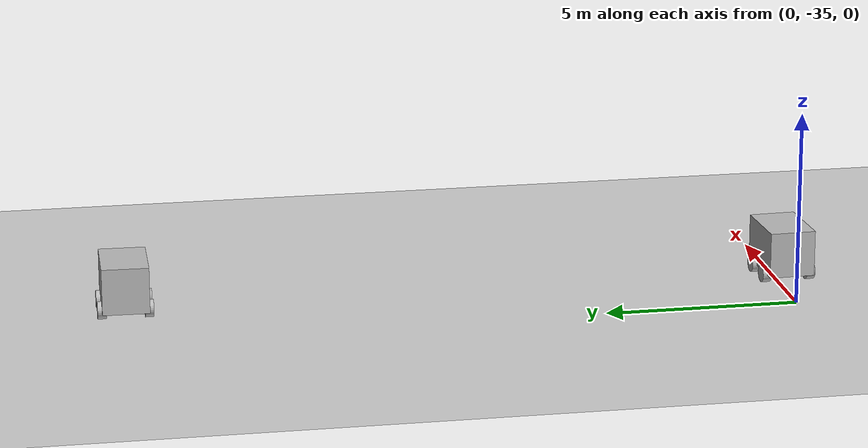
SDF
<sdf version="1.7">
 <world name="rover_world">
  <model name="ground_plane">
   <static>1</static>
   <link name="link">
    <collision name="collision">
     <geometry><plane><normal>0 0 1</normal><size>100 100</size></plane></geometry>
     <surface>
      <contact><collide_bitmask>65535</collide_bitmask></contact>
      <friction><ode><mu>100</mu><mu2>50</mu2></ode></friction>
     </surface>
    </collision>
    <visual name="visual">
     <cast_shadows>0</cast_shadows>
     <geometry><plane><normal>0 0 1</normal><size>100 100</size></plane></geometry>
     <material>
      <script><uri>file://media/materials/scripts/gazebo.material</uri><name>Gazebo/Grey</name></script>
     </material>
    </visual>
   </link>
  </model>
  <model name="robot_2">
   <link name="base_link">
    <inertial>
     <mass>5</mass>
     <inertia><ixx>1.2</ixx><ixy>0</ixy><ixz>0</ixz><iyy>1.95</iyy><iyz>0</iyz><izz>1.95</izz></inertia>
    </inertial>
    <collision name="base_link_collision"><geometry><box><size>1.8 1.2 1.2</size></box></geometry></collision>
    <visual name="base_link_visual"><geometry><box><size>1.8 1.2 1.2</size></box></geometry></visual>
   </link>
   <joint name="lb_wheel_joint" type="revolute">
    <pose relative_to="base_link">-0.45 0.6 -0.6 -1.5708 0 0</pose>
    <parent>base_link</parent>
    <child>lb_wheel</child>
    <axis>
     <xyz>0 0 1</xyz>
     <limit><lower>-1e+16</lower><upper>1e+16</upper></limit>
     <dynamics><spring_reference>0</spring_reference><spring_stiffness>0</spring_stiffness></dynamics>
    </axis>
   </joint>
   <link name="lb_wheel">
    <pose relative_to="lb_wheel_joint">0 0 0 0 -0 0</pose>
    <inertial>
     <mass>0.25</mass>
     <inertia>
      <ixx>0.0041724</ixx>
      <ixy>0</ixy>
      <ixz>0</ixz>
      <iyy>0.0041724</iyy>
      <iyz>0</iyz>
      <izz>0.00632813</izz>
     </inertia>
    </inertial>
    <collision name="lb_wheel_collision">
     <geometry><cylinder><length>0.22</length><radius>0.225</radius></cylinder></geometry>
    </collision>
    <visual name="lb_wheel_visual">
     <geometry><cylinder><length>0.22</length><radius>0.225</radius></cylinder></geometry>
    </visual>
   </link>
   <joint name="lf_wheel_joint" type="revolute">
    <pose relative_to="base_link">0.45 0.6 -0.6 -1.5708 0 0</pose>
    <parent>base_link</parent>
    <child>lf_wheel</child>
    <axis>
     <xyz>0 0 1</xyz>
     <limit><lower>-1e+16</lower><upper>1e+16</upper></limit>
     <dynamics><spring_reference>0</spring_reference><spring_stiffness>0</spring_stiffness></dynamics>
    </axis>
   </joint>
   <link name="lf_wheel">
    <pose relative_to="lf_wheel_joint">0 0 0 0 -0 0</pose>
    <inertial>
     <mass>0.25</mass>
     <inertia>
      <ixx>0.0041724</ixx>
      <ixy>0</ixy>
      <ixz>0</ixz>
      <iyy>0.0041724</iyy>
      <iyz>0</iyz>
      <izz>0.00632813</izz>
     </inertia>
    </inertial>
    <collision name="lf_wheel_collision">
     <geometry><cylinder><length>0.22</length><radius>0.225</radius></cylinder></geometry>
    </collision>
    <visual name="lf_wheel_visual">
     <geometry><cylinder><length>0.22</length><radius>0.225</radius></cylinder></geometry>
    </visual>
   </link>
   <joint name="rb_wheel_joint" type="revolute">
    <pose relative_to="base_link">-0.45 -0.6 -0.6 1.5708 -0 0</pose>
    <parent>base_link</parent>
    <child>rb_wheel</child>
    <axis>
     <xyz>0 0 -1</xyz>
     <limit><lower>-1e+16</lower><upper>1e+16</upper></limit>
     <dynamics><spring_reference>0</spring_reference><spring_stiffness>0</spring_stiffness></dynamics>
    </axis>
   </joint>
   <link name="rb_wheel">
    <pose relative_to="rb_wheel_joint">0 0 0 0 -0 0</pose>
    <inertial>
     <mass>0.25</mass>
     <inertia>
      <ixx>0.0041724</ixx>
      <ixy>0</ixy>
      <ixz>0</ixz>
      <iyy>0.0041724</iyy>
      <iyz>0</iyz>
      <izz>0.00632813</izz>
     </inertia>
    </inertial>
    <collision name="rb_wheel_collision">
     <geometry><cylinder><length>0.22</length><radius>0.225</radius></cylinder></geometry>
    </collision>
    <visual name="rb_wheel_visual">
     <geometry><cylinder><length>0.22</length><radius>0.225</radius></cylinder></geometry>
    </visual>
   </link>
   <joint name="rf_wheel_joint" type="revolute">
    <pose relative_to="base_link">0.45 -0.6 -0.6 1.5708 -0 0</pose>
    <parent>base_link</parent>
    <child>rf_wheel</child>
    <axis>
     <xyz>0 0 -1</xyz>
     <limit><lower>-1e+16</lower><upper>1e+16</upper></limit>
     <dynamics><spring_reference>0</spring_reference><spring_stiffness>0</spring_stiffness></dynamics>
    </axis>
   </joint>
   <link name="rf_wheel">
    <pose relative_to="rf_wheel_joint">0 0 0 0 -0 0</pose>
    <inertial>
     <mass>0.25</mass>
     <inertia>
      <ixx>0.0041724</ixx>
      <ixy>0</ixy>
      <ixz>0</ixz>
      <iyy>0.0041724</iyy>
      <iyz>0</iyz>
      <izz>0.00632813</izz>
     </inertia>
    </inertial>
    <collision name="rf_wheel_collision">
     <geometry><cylinder><length>0.22</length><radius>0.225</radius></cylinder></geometry>
    </collision>
    <visual name="rf_wheel_visual">
     <geometry><cylinder><length>0.22</length><radius>0.225</radius></cylinder></geometry>
    </visual>
   </link>
   <static>0</static>
   <plugin name="gazebo_control2" filename="libgazebo_ros_diff_drive.so">
    <num_wheel_pairs>2</num_wheel_pairs>
    <ros><namespace>robot2</namespace></ros>
    <left_joint>lb_wheel_joint</left_joint>
    <right_joint>rb_wheel_joint</right_joint>
    <left_joint>lf_wheel_joint</left_joint>
    <right_joint>rf_wheel_joint</right_joint>
    <wheel_separation>1.2</wheel_separation>
    <wheel_diameter>0.45</wheel_diameter>
    <command_topic>cmd_vel</command_topic>
    <update_rate>50</update_rate>
    <max_wheel_torque>100</max_wheel_torque>
    <max_wheel_acceleration>5.0</max_wheel_acceleration>
    <odometry_frame>odom</odometry_frame>
    <robot_base_frame>base_link</robot_base_frame>
    <publish_odom>1</publish_odom>
    <publish_odom_tf>1</publish_odom_tf>
    <publish_wheel_tf>1</publish_wheel_tf>
   </plugin>
   <pose>2.31553 -17.9697 0.826015 -1e-06 -1e-06 -0.029534</pose>
  </model>
  <model name="robot_1">
   <link name="base_link">
    <inertial>
     <mass>5</mass>
     <inertia><ixx>1.2</ixx><ixy>0</ixy><ixz>0</ixz><iyy>1.95</iyy><iyz>0</iyz><izz>1.95</izz></inertia>
    </inertial>
    <collision name="base_link_collision"><geometry><box><size>1.8 1.2 1.2</size></box></geometry></collision>
    <visual name="base_link_visual"><geometry><box><size>1.8 1.2 1.2</size></box></geometry></visual>
   </link>
   <joint name="lb_wheel_joint" type="revolute">
    <pose relative_to="base_link">-0.45 0.6 -0.6 -1.5708 0 0</pose>
    <parent>base_link</parent>
    <child>lb_wheel</child>
    <axis>
     <xyz>0 0 1</xyz>
     <limit><lower>-1e+16</lower><upper>1e+16</upper></limit>
     <dynamics><spring_reference>0</spring_reference><spring_stiffness>0</spring_stiffness></dynamics>
    </axis>
   </joint>
   <link name="lb_wheel">
    <pose relative_to="lb_wheel_joint">0 0 0 0 -0 0</pose>
    <inertial>
     <mass>0.25</mass>
     <inertia>
      <ixx>0.0041724</ixx>
      <ixy>0</ixy>
      <ixz>0</ixz>
      <iyy>0.0041724</iyy>
      <iyz>0</iyz>
      <izz>0.00632813</izz>
     </inertia>
    </inertial>
    <collision name="lb_wheel_collision">
     <geometry><cylinder><length>0.22</length><radius>0.225</radius></cylinder></geometry>
    </collision>
    <visual name="lb_wheel_visual">
     <geometry><cylinder><length>0.22</length><radius>0.225</radius></cylinder></geometry>
    </visual>
   </link>
   <joint name="lf_wheel_joint" type="revolute">
    <pose relative_to="base_link">0.45 0.6 -0.6 -1.5708 0 0</pose>
    <parent>base_link</parent>
    <child>lf_wheel</child>
    <axis>
     <xyz>0 0 1</xyz>
     <limit><lower>-1e+16</lower><upper>1e+16</upper></limit>
     <dynamics><spring_reference>0</spring_reference><spring_stiffness>0</spring_stiffness></dynamics>
    </axis>
   </joint>
   <link name="lf_wheel">
    <pose relative_to="lf_wheel_joint">0 0 0 0 -0 0</pose>
    <inertial>
     <mass>0.25</mass>
     <inertia>
      <ixx>0.0041724</ixx>
      <ixy>0</ixy>
      <ixz>0</ixz>
      <iyy>0.0041724</iyy>
      <iyz>0</iyz>
      <izz>0.00632813</izz>
     </inertia>
    </inertial>
    <collision name="lf_wheel_collision">
     <geometry><cylinder><length>0.22</length><radius>0.225</radius></cylinder></geometry>
    </collision>
    <visual name="lf_wheel_visual">
     <geometry><cylinder><length>0.22</length><radius>0.225</radius></cylinder></geometry>
    </visual>
   </link>
   <joint name="rb_wheel_joint" type="revolute">
    <pose relative_to="base_link">-0.45 -0.6 -0.6 1.5708 -0 0</pose>
    <parent>base_link</parent>
    <child>rb_wheel</child>
    <axis>
     <xyz>0 0 -1</xyz>
     <limit><lower>-1e+16</lower><upper>1e+16</upper></limit>
     <dynamics><spring_reference>0</spring_reference><spring_stiffness>0</spring_stiffness></dynamics>
    </axis>
   </joint>
   <link name="rb_wheel">
    <pose relative_to="rb_wheel_joint">0 0 0 0 -0 0</pose>
    <inertial>
     <mass>0.25</mass>
     <inertia>
      <ixx>0.0041724</ixx>
      <ixy>0</ixy>
      <ixz>0</ixz>
      <iyy>0.0041724</iyy>
      <iyz>0</iyz>
      <izz>0.00632813</izz>
     </inertia>
    </inertial>
    <collision name="rb_wheel_collision">
     <geometry><cylinder><length>0.22</length><radius>0.225</radius></cylinder></geometry>
    </collision>
    <visual name="rb_wheel_visual">
     <geometry><cylinder><length>0.22</length><radius>0.225</radius></cylinder></geometry>
    </visual>
   </link>
   <joint name="rf_wheel_joint" type="revolute">
    <pose relative_to="base_link">0.45 -0.6 -0.6 1.5708 -0 0</pose>
    <parent>base_link</parent>
    <child>rf_wheel</child>
    <axis>
     <xyz>0 0 -1</xyz>
     <limit><lower>-1e+16</lower><upper>1e+16</upper></limit>
     <dynamics><spring_reference>0</spring_reference><spring_stiffness>0</spring_stiffness></dynamics>
    </axis>
   </joint>
   <link name="rf_wheel">
    <pose relative_to="rf_wheel_joint">0 0 0 0 -0 0</pose>
    <inertial>
     <mass>0.25</mass>
     <inertia>
      <ixx>0.0041724</ixx>
      <ixy>0</ixy>
      <ixz>0</ixz>
      <iyy>0.0041724</iyy>
      <iyz>0</iyz>
      <izz>0.00632813</izz>
     </inertia>
    </inertial>
    <collision name="rf_wheel_collision">
     <geometry><cylinder><length>0.22</length><radius>0.225</radius></cylinder></geometry>
    </collision>
    <visual name="rf_wheel_visual">
     <geometry><cylinder><length>0.22</length><radius>0.225</radius></cylinder></geometry>
    </visual>
   </link>
   <static>0</static>
   <plugin name="gazebo_control1" filename="libgazebo_ros_diff_drive.so">
    <num_wheel_pairs>2</num_wheel_pairs>
    <ros><namespace>robot1</namespace></ros>
    <left_joint>lb_wheel_joint</left_joint>
    <right_joint>rb_wheel_joint</right_joint>
    <left_joint>lf_wheel_joint</left_joint>
    <right_joint>rf_wheel_joint</right_joint>
    <wheel_separation>1.2</wheel_separation>
    <wheel_diameter>0.45</wheel_diameter>
    <command_topic>cmd_vel</command_topic>
    <update_rate>50</update_rate>
    <max_wheel_torque>100</max_wheel_torque>
    <max_wheel_acceleration>5.0</max_wheel_acceleration>
    <odometry_frame>odom</odometry_frame>
    <robot_base_frame>base_link</robot_base_frame>
    <publish_odom>1</publish_odom>
    <publish_odom_tf>1</publish_odom_tf>
    <publish_wheel_tf>1</publish_wheel_tf>
   </plugin>
   <pose>2.29477 -35.2422 0.826015 2e-06 -5e-06 0.04354</pose>
  </model>
 </world>
</sdf>
